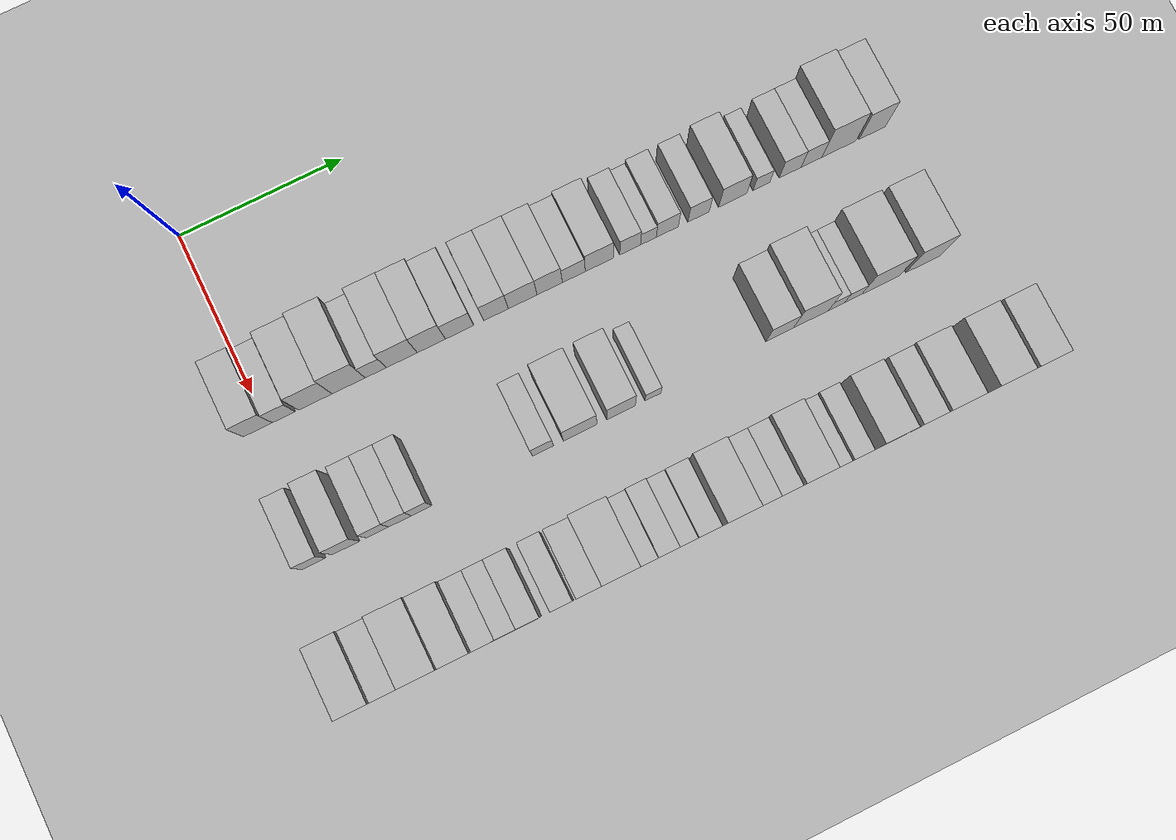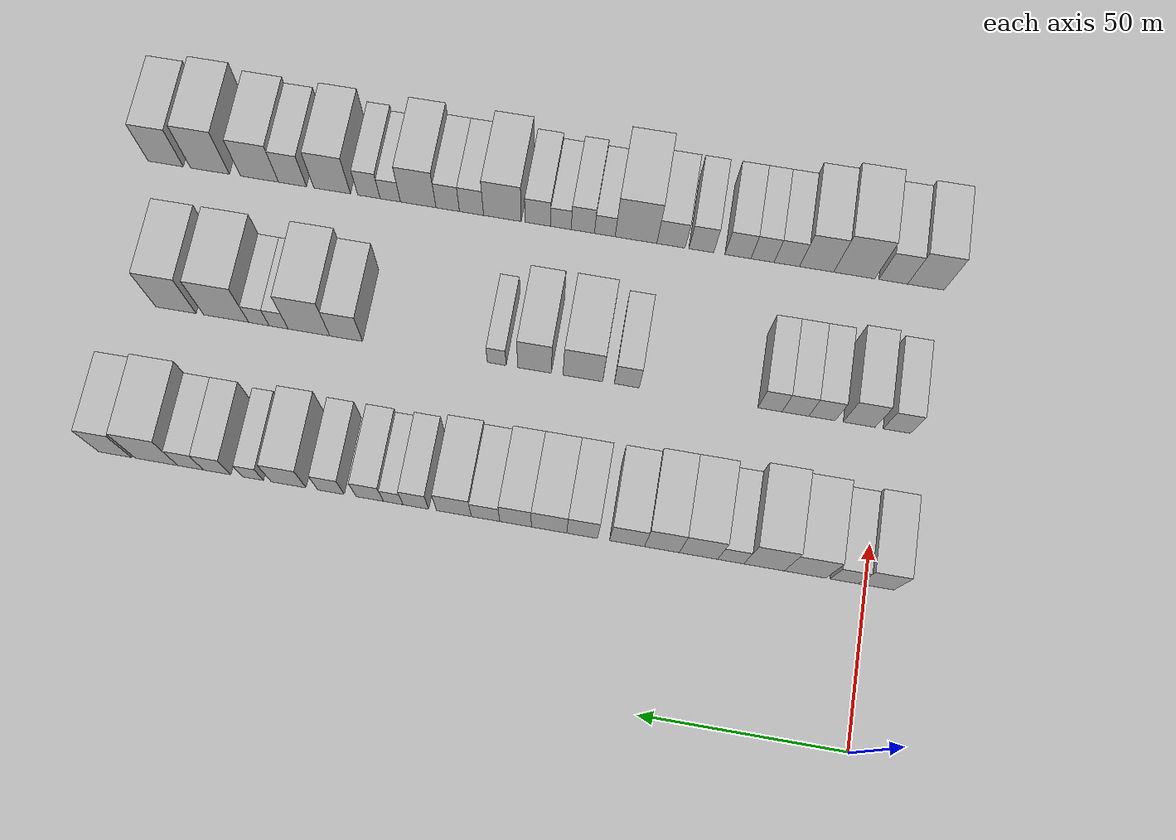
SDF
<sdf version="1.6">
 <world name="default">
  <include><name>ground_plane_1</name><uri>model://HANNAS_ground_plane</uri></include>
  <include>
   <name>ground_plane_2</name>
   <uri>model://HANNAS_ground_plane</uri>
   <pose>100 0 0  0 0 0</pose>
  </include>
  <model name="building_44">
   <static>1</static>
   <pose>50.0000 -2.4323 0 0.000000 0.000000 0.000000</pose>
   <link name="link">
    <pose>0 0 9.00 0 0 0</pose>
    <collision name="collision"><geometry><box><size>20.0000 8.6855 18.0000</size></box></geometry></collision>
    <visual name="visual">
     <cast_shadows>0</cast_shadows>
     <geometry><box><size>20.0000 8.6855 18.0000</size></box></geometry>
     <material>
      <script>
       <uri>model://HANNAS_wall/materials/scripts</uri>
       <uri>model://HANNAS_wall/materials/textures</uri>
       <name>vrc/HANNAS_wall</name>
      </script>
     </material>
    </visual>
   </link>
  </model>
  <model name="building_45">
   <static>1</static>
   <pose>50.0000 5.3579 0 0.000000 0.000000 0.000000</pose>
   <link name="link">
    <pose>0 0 7.50 0 0 0</pose>
    <collision name="collision"><geometry><box><size>20.0000 6.8949 15.0000</size></box></geometry></collision>
    <visual name="visual">
     <cast_shadows>0</cast_shadows>
     <geometry><box><size>20.0000 6.8949 15.0000</size></box></geometry>
     <material>
      <script>
       <uri>model://HANNAS_wall/materials/scripts</uri>
       <uri>model://HANNAS_wall/materials/textures</uri>
       <name>vrc/HANNAS_wall</name>
      </script>
     </material>
    </visual>
   </link>
  </model>
  <model name="building_46">
   <static>1</static>
   <pose>50.0000 14.8771 0 0.000000 0.000000 0.000000</pose>
   <link name="link">
    <pose>0 0 10.50 0 0 0</pose>
    <collision name="collision"><geometry><box><size>20.0000 10.1435 21.0000</size></box></geometry></collision>
    <visual name="visual">
     <cast_shadows>0</cast_shadows>
     <geometry><box><size>20.0000 10.1435 21.0000</size></box></geometry>
     <material>
      <script>
       <uri>model://HANNAS_wall/materials/scripts</uri>
       <uri>model://HANNAS_wall/materials/textures</uri>
       <name>vrc/HANNAS_wall</name>
      </script>
     </material>
    </visual>
   </link>
  </model>
  <model name="building_47">
   <static>1</static>
   <pose>50.0000 24.9479 0 0.000000 0.000000 0.000000</pose>
   <link name="link">
    <pose>0 0 12.00 0 0 0</pose>
    <collision name="collision"><geometry><box><size>20.0000 9.9981 24.0000</size></box></geometry></collision>
    <visual name="visual">
     <cast_shadows>0</cast_shadows>
     <geometry><box><size>20.0000 9.9981 24.0000</size></box></geometry>
     <material>
      <script>
       <uri>model://HANNAS_wall/materials/scripts</uri>
       <uri>model://HANNAS_wall/materials/textures</uri>
       <name>vrc/HANNAS_wall</name>
      </script>
     </material>
    </visual>
   </link>
  </model>
  <model name="building_48">
   <static>1</static>
   <pose>50.0000 33.1566 0 0.000000 0.000000 0.000000</pose>
   <link name="link">
    <pose>0 0 7.50 0 0 0</pose>
    <collision name="collision"><geometry><box><size>20.0000 6.4193 15.0000</size></box></geometry></collision>
    <visual name="visual">
     <cast_shadows>0</cast_shadows>
     <geometry><box><size>20.0000 6.4193 15.0000</size></box></geometry>
     <material>
      <script>
       <uri>model://HANNAS_wall/materials/scripts</uri>
       <uri>model://HANNAS_wall/materials/textures</uri>
       <name>vrc/HANNAS_wall</name>
      </script>
     </material>
    </visual>
   </link>
  </model>
  <model name="building_49">
   <static>1</static>
   <pose>50.0000 41.0933 0 0.000000 0.000000 0.000000</pose>
   <link name="link">
    <pose>0 0 10.50 0 0 0</pose>
    <collision name="collision"><geometry><box><size>20.0000 9.4541 21.0000</size></box></geometry></collision>
    <visual name="visual">
     <cast_shadows>0</cast_shadows>
     <geometry><box><size>20.0000 9.4541 21.0000</size></box></geometry>
     <material>
      <script>
       <uri>model://HANNAS_wall/materials/scripts</uri>
       <uri>model://HANNAS_wall/materials/textures</uri>
       <name>vrc/HANNAS_wall</name>
      </script>
     </material>
    </visual>
   </link>
  </model>
  <model name="building_50">
   <static>1</static>
   <pose>50.0000 50.1403 0 0.000000 0.000000 0.000000</pose>
   <link name="link">
    <pose>0 0 10.50 0 0 0</pose>
    <collision name="collision"><geometry><box><size>20.0000 8.6399 21.0000</size></box></geometry></collision>
    <visual name="visual">
     <cast_shadows>0</cast_shadows>
     <geometry><box><size>20.0000 8.6399 21.0000</size></box></geometry>
     <material>
      <script>
       <uri>model://HANNAS_wall/materials/scripts</uri>
       <uri>model://HANNAS_wall/materials/textures</uri>
       <name>vrc/HANNAS_wall</name>
      </script>
     </material>
    </visual>
   </link>
  </model>
  <model name="building_51">
   <static>1</static>
   <pose>50.0000 58.8040 0 0.000000 0.000000 0.000000</pose>
   <link name="link">
    <pose>0 0 9.00 0 0 0</pose>
    <collision name="collision"><geometry><box><size>20.0000 8.6874 18.0000</size></box></geometry></collision>
    <visual name="visual">
     <cast_shadows>0</cast_shadows>
     <geometry><box><size>20.0000 8.6874 18.0000</size></box></geometry>
     <material>
      <script>
       <uri>model://HANNAS_wall/materials/scripts</uri>
       <uri>model://HANNAS_wall/materials/textures</uri>
       <name>vrc/HANNAS_wall</name>
      </script>
     </material>
    </visual>
   </link>
  </model>
  <model name="building_52">
   <static>1</static>
   <pose>50.0000 69.9709 0 0.000000 0.000000 0.000000</pose>
   <link name="link">
    <pose>0 0 9.00 0 0 0</pose>
    <collision name="collision"><geometry><box><size>20.0000 7.6463 18.0000</size></box></geometry></collision>
    <visual name="visual">
     <cast_shadows>0</cast_shadows>
     <geometry><box><size>20.0000 7.6463 18.0000</size></box></geometry>
     <material>
      <script>
       <uri>model://HANNAS_wall/materials/scripts</uri>
       <uri>model://HANNAS_wall/materials/textures</uri>
       <name>vrc/HANNAS_wall</name>
      </script>
     </material>
    </visual>
   </link>
  </model>
  <model name="building_53">
   <static>1</static>
   <pose>50.0000 78.2088 0 0.000000 0.000000 0.000000</pose>
   <link name="link">
    <pose>0 0 9.00 0 0 0</pose>
    <collision name="collision"><geometry><box><size>20.0000 8.8295 18.0000</size></box></geometry></collision>
    <visual name="visual">
     <cast_shadows>0</cast_shadows>
     <geometry><box><size>20.0000 8.8295 18.0000</size></box></geometry>
     <material>
      <script>
       <uri>model://HANNAS_wall/materials/scripts</uri>
       <uri>model://HANNAS_wall/materials/textures</uri>
       <name>vrc/HANNAS_wall</name>
      </script>
     </material>
    </visual>
   </link>
  </model>
  <model name="building_54">
   <static>1</static>
   <pose>50.0000 86.5597 0 0.000000 0.000000 0.000000</pose>
   <link name="link">
    <pose>0 0 9.00 0 0 0</pose>
    <collision name="collision"><geometry><box><size>20.0000 7.8723 18.0000</size></box></geometry></collision>
    <visual name="visual">
     <cast_shadows>0</cast_shadows>
     <geometry><box><size>20.0000 7.8723 18.0000</size></box></geometry>
     <material>
      <script>
       <uri>model://HANNAS_wall/materials/scripts</uri>
       <uri>model://HANNAS_wall/materials/textures</uri>
       <name>vrc/HANNAS_wall</name>
      </script>
     </material>
    </visual>
   </link>
  </model>
  <model name="building_55">
   <static>1</static>
   <pose>50.0000 94.0495 0 0.000000 0.000000 0.000000</pose>
   <link name="link">
    <pose>0 0 7.50 0 0 0</pose>
    <collision name="collision"><geometry><box><size>20.0000 7.1074 15.0000</size></box></geometry></collision>
    <visual name="visual">
     <cast_shadows>0</cast_shadows>
     <geometry><box><size>20.0000 7.1074 15.0000</size></box></geometry>
     <material>
      <script>
       <uri>model://HANNAS_wall/materials/scripts</uri>
       <uri>model://HANNAS_wall/materials/textures</uri>
       <name>vrc/HANNAS_wall</name>
      </script>
     </material>
    </visual>
   </link>
  </model>
  <model name="building_56">
   <static>1</static>
   <pose>50.0000 101.9663 0 0.000000 0.000000 0.000000</pose>
   <link name="link">
    <pose>0 0 9.00 0 0 0</pose>
    <collision name="collision"><geometry><box><size>20.0000 8.7262 18.0000</size></box></geometry></collision>
    <visual name="visual">
     <cast_shadows>0</cast_shadows>
     <geometry><box><size>20.0000 8.7262 18.0000</size></box></geometry>
     <material>
      <script>
       <uri>model://HANNAS_wall/materials/scripts</uri>
       <uri>model://HANNAS_wall/materials/textures</uri>
       <name>vrc/HANNAS_wall</name>
      </script>
     </material>
    </visual>
   </link>
  </model>
  <model name="building_57">
   <static>1</static>
   <pose>50.0000 111.5632 0 0.000000 0.000000 0.000000</pose>
   <link name="link">
    <pose>0 0 7.50 0 0 0</pose>
    <collision name="collision"><geometry><box><size>20.0000 6.4676 15.0000</size></box></geometry></collision>
    <visual name="visual">
     <cast_shadows>0</cast_shadows>
     <geometry><box><size>20.0000 6.4676 15.0000</size></box></geometry>
     <material>
      <script>
       <uri>model://HANNAS_wall/materials/scripts</uri>
       <uri>model://HANNAS_wall/materials/textures</uri>
       <name>vrc/HANNAS_wall</name>
      </script>
     </material>
    </visual>
   </link>
  </model>
  <model name="building_58">
   <static>1</static>
   <pose>50.0000 117.2710 0 0.000000 0.000000 0.000000</pose>
   <link name="link">
    <pose>0 0 6.00 0 0 0</pose>
    <collision name="collision"><geometry><box><size>20.0000 4.9481 12.0000</size></box></geometry></collision>
    <visual name="visual">
     <cast_shadows>0</cast_shadows>
     <geometry><box><size>20.0000 4.9481 12.0000</size></box></geometry>
     <material>
      <script>
       <uri>model://HANNAS_wall/materials/scripts</uri>
       <uri>model://HANNAS_wall/materials/textures</uri>
       <name>vrc/HANNAS_wall</name>
      </script>
     </material>
    </visual>
   </link>
  </model>
  <model name="building_59">
   <static>1</static>
   <pose>50.0000 123.2092 0 0.000000 0.000000 0.000000</pose>
   <link name="link">
    <pose>0 0 7.50 0 0 0</pose>
    <collision name="collision"><geometry><box><size>20.0000 6.9283 15.0000</size></box></geometry></collision>
    <visual name="visual">
     <cast_shadows>0</cast_shadows>
     <geometry><box><size>20.0000 6.9283 15.0000</size></box></geometry>
     <material>
      <script>
       <uri>model://HANNAS_wall/materials/scripts</uri>
       <uri>model://HANNAS_wall/materials/textures</uri>
       <name>vrc/HANNAS_wall</name>
      </script>
     </material>
    </visual>
   </link>
  </model>
  <model name="building_60">
   <static>1</static>
   <pose>50.0000 133.0297 0 0.000000 0.000000 0.000000</pose>
   <link name="link">
    <pose>0 0 7.50 0 0 0</pose>
    <collision name="collision"><geometry><box><size>20.0000 6.7127 15.0000</size></box></geometry></collision>
    <visual name="visual">
     <cast_shadows>0</cast_shadows>
     <geometry><box><size>20.0000 6.7127 15.0000</size></box></geometry>
     <material>
      <script>
       <uri>model://HANNAS_wall/materials/scripts</uri>
       <uri>model://HANNAS_wall/materials/textures</uri>
       <name>vrc/HANNAS_wall</name>
      </script>
     </material>
    </visual>
   </link>
  </model>
  <model name="building_61">
   <static>1</static>
   <pose>50.0000 143.8145 0 0.000000 0.000000 0.000000</pose>
   <link name="link">
    <pose>0 0 9.00 0 0 0</pose>
    <collision name="collision"><geometry><box><size>20.0000 8.8569 18.0000</size></box></geometry></collision>
    <visual name="visual">
     <cast_shadows>0</cast_shadows>
     <geometry><box><size>20.0000 8.8569 18.0000</size></box></geometry>
     <material>
      <script>
       <uri>model://HANNAS_wall/materials/scripts</uri>
       <uri>model://HANNAS_wall/materials/textures</uri>
       <name>vrc/HANNAS_wall</name>
      </script>
     </material>
    </visual>
   </link>
  </model>
  <model name="building_62">
   <static>1</static>
   <pose>50.0000 152.9021 0 0.000000 0.000000 0.000000</pose>
   <link name="link">
    <pose>0 0 6.00 0 0 0</pose>
    <collision name="collision"><geometry><box><size>20.0000 5.3185 12.0000</size></box></geometry></collision>
    <visual name="visual">
     <cast_shadows>0</cast_shadows>
     <geometry><box><size>20.0000 5.3185 12.0000</size></box></geometry>
     <material>
      <script>
       <uri>model://HANNAS_wall/materials/scripts</uri>
       <uri>model://HANNAS_wall/materials/textures</uri>
       <name>vrc/HANNAS_wall</name>
      </script>
     </material>
    </visual>
   </link>
  </model>
  <model name="building_63">
   <static>1</static>
   <pose>50.0000 162.0678 0 0.000000 0.000000 0.000000</pose>
   <link name="link">
    <pose>0 0 7.50 0 0 0</pose>
    <collision name="collision"><geometry><box><size>20.0000 7.0128 15.0000</size></box></geometry></collision>
    <visual name="visual">
     <cast_shadows>0</cast_shadows>
     <geometry><box><size>20.0000 7.0128 15.0000</size></box></geometry>
     <material>
      <script>
       <uri>model://HANNAS_wall/materials/scripts</uri>
       <uri>model://HANNAS_wall/materials/textures</uri>
       <name>vrc/HANNAS_wall</name>
      </script>
     </material>
    </visual>
   </link>
  </model>
  <model name="building_64">
   <static>1</static>
   <pose>50.0000 168.8523 0 0.000000 0.000000 0.000000</pose>
   <link name="link">
    <pose>0 0 7.50 0 0 0</pose>
    <collision name="collision"><geometry><box><size>20.0000 6.5562 15.0000</size></box></geometry></collision>
    <visual name="visual">
     <cast_shadows>0</cast_shadows>
     <geometry><box><size>20.0000 6.5562 15.0000</size></box></geometry>
     <material>
      <script>
       <uri>model://HANNAS_wall/materials/scripts</uri>
       <uri>model://HANNAS_wall/materials/textures</uri>
       <name>vrc/HANNAS_wall</name>
      </script>
     </material>
    </visual>
   </link>
  </model>
  <model name="building_65">
   <static>1</static>
   <pose>50.0000 177.6040 0 0.000000 0.000000 0.000000</pose>
   <link name="link">
    <pose>0 0 12.00 0 0 0</pose>
    <collision name="collision"><geometry><box><size>20.0000 10.9473 24.0000</size></box></geometry></collision>
    <visual name="visual">
     <cast_shadows>0</cast_shadows>
     <geometry><box><size>20.0000 10.9473 24.0000</size></box></geometry>
     <material>
      <script>
       <uri>model://HANNAS_wall/materials/scripts</uri>
       <uri>model://HANNAS_wall/materials/textures</uri>
       <name>vrc/HANNAS_wall</name>
      </script>
     </material>
    </visual>
   </link>
  </model>
  <model name="building_66">
   <static>1</static>
   <pose>50.0000 188.2882 0 0.000000 0.000000 0.000000</pose>
   <link name="link">
    <pose>0 0 10.50 0 0 0</pose>
    <collision name="collision"><geometry><box><size>20.0000 8.4212 21.0000</size></box></geometry></collision>
    <visual name="visual">
     <cast_shadows>0</cast_shadows>
     <geometry><box><size>20.0000 8.4212 21.0000</size></box></geometry>
     <material>
      <script>
       <uri>model://HANNAS_wall/materials/scripts</uri>
       <uri>model://HANNAS_wall/materials/textures</uri>
       <name>vrc/HANNAS_wall</name>
      </script>
     </material>
    </visual>
   </link>
  </model>
  <model name="building_130">
   <static>1</static>
   <pose>90.0000 -3.6474 0 0.000000 0.000000 0.000000</pose>
   <link name="link">
    <pose>0 0 7.50 0 0 0</pose>
    <collision name="collision"><geometry><box><size>20.0000 6.9148 15.0000</size></box></geometry></collision>
    <visual name="visual">
     <cast_shadows>0</cast_shadows>
     <geometry><box><size>20.0000 6.9148 15.0000</size></box></geometry>
     <material>
      <script>
       <uri>model://HANNAS_wall/materials/scripts</uri>
       <uri>model://HANNAS_wall/materials/textures</uri>
       <name>vrc/HANNAS_wall</name>
      </script>
     </material>
    </visual>
   </link>
  </model>
  <model name="building_131">
   <static>1</static>
   <pose>90.0000 5.8521 0 0.000000 0.000000 0.000000</pose>
   <link name="link">
    <pose>0 0 9.00 0 0 0</pose>
    <collision name="collision"><geometry><box><size>20.0000 8.0843 18.0000</size></box></geometry></collision>
    <visual name="visual">
     <cast_shadows>0</cast_shadows>
     <geometry><box><size>20.0000 8.0843 18.0000</size></box></geometry>
     <material>
      <script>
       <uri>model://HANNAS_wall/materials/scripts</uri>
       <uri>model://HANNAS_wall/materials/textures</uri>
       <name>vrc/HANNAS_wall</name>
      </script>
     </material>
    </visual>
   </link>
  </model>
  <model name="building_132">
   <static>1</static>
   <pose>90.0000 15.2468 0 0.000000 0.000000 0.000000</pose>
   <link name="link">
    <pose>0 0 7.50 0 0 0</pose>
    <collision name="collision"><geometry><box><size>20.0000 6.7051 15.0000</size></box></geometry></collision>
    <visual name="visual">
     <cast_shadows>0</cast_shadows>
     <geometry><box><size>20.0000 6.7051 15.0000</size></box></geometry>
     <material>
      <script>
       <uri>model://HANNAS_wall/materials/scripts</uri>
       <uri>model://HANNAS_wall/materials/textures</uri>
       <name>vrc/HANNAS_wall</name>
      </script>
     </material>
    </visual>
   </link>
  </model>
  <model name="building_133">
   <static>1</static>
   <pose>90.0000 21.9842 0 0.000000 0.000000 0.000000</pose>
   <link name="link">
    <pose>0 0 7.50 0 0 0</pose>
    <collision name="collision"><geometry><box><size>20.0000 6.7697 15.0000</size></box></geometry></collision>
    <visual name="visual">
     <cast_shadows>0</cast_shadows>
     <geometry><box><size>20.0000 6.7697 15.0000</size></box></geometry>
     <material>
      <script>
       <uri>model://HANNAS_wall/materials/scripts</uri>
       <uri>model://HANNAS_wall/materials/textures</uri>
       <name>vrc/HANNAS_wall</name>
      </script>
     </material>
    </visual>
   </link>
  </model>
  <model name="building_134">
   <static>1</static>
   <pose>90.0000 28.4486 0 0.000000 0.000000 0.000000</pose>
   <link name="link">
    <pose>0 0 7.50 0 0 0</pose>
    <collision name="collision"><geometry><box><size>20.0000 6.1591 15.0000</size></box></geometry></collision>
    <visual name="visual">
     <cast_shadows>0</cast_shadows>
     <geometry><box><size>20.0000 6.1591 15.0000</size></box></geometry>
     <material>
      <script>
       <uri>model://HANNAS_wall/materials/scripts</uri>
       <uri>model://HANNAS_wall/materials/textures</uri>
       <name>vrc/HANNAS_wall</name>
      </script>
     </material>
    </visual>
   </link>
  </model>
  <model name="building_135">
   <static>1</static>
   <pose>90.0000 65.0959 0 0.000000 0.000000 0.000000</pose>
   <link name="link">
    <pose>0 0 7.50 0 0 0</pose>
    <collision name="collision"><geometry><box><size>20.0000 6.3785 15.0000</size></box></geometry></collision>
    <visual name="visual">
     <cast_shadows>0</cast_shadows>
     <geometry><box><size>20.0000 6.3785 15.0000</size></box></geometry>
     <material>
      <script>
       <uri>model://HANNAS_wall/materials/scripts</uri>
       <uri>model://HANNAS_wall/materials/textures</uri>
       <name>vrc/HANNAS_wall</name>
      </script>
     </material>
    </visual>
   </link>
  </model>
  <model name="building_136">
   <static>1</static>
   <pose>90.0000 76.4024 0 0.000000 0.000000 0.000000</pose>
   <link name="link">
    <pose>0 0 10.50 0 0 0</pose>
    <collision name="collision"><geometry><box><size>20.0000 10.2346 21.0000</size></box></geometry></collision>
    <visual name="visual">
     <cast_shadows>0</cast_shadows>
     <geometry><box><size>20.0000 10.2346 21.0000</size></box></geometry>
     <material>
      <script>
       <uri>model://HANNAS_wall/materials/scripts</uri>
       <uri>model://HANNAS_wall/materials/textures</uri>
       <name>vrc/HANNAS_wall</name>
      </script>
     </material>
    </visual>
   </link>
  </model>
  <model name="building_137">
   <static>1</static>
   <pose>90.0000 88.8736 0 0.000000 0.000000 0.000000</pose>
   <link name="link">
    <pose>0 0 10.50 0 0 0</pose>
    <collision name="collision"><geometry><box><size>20.0000 8.7078 21.0000</size></box></geometry></collision>
    <visual name="visual">
     <cast_shadows>0</cast_shadows>
     <geometry><box><size>20.0000 8.7078 21.0000</size></box></geometry>
     <material>
      <script>
       <uri>model://HANNAS_wall/materials/scripts</uri>
       <uri>model://HANNAS_wall/materials/textures</uri>
       <name>vrc/HANNAS_wall</name>
      </script>
     </material>
    </visual>
   </link>
  </model>
  <model name="building_138">
   <static>1</static>
   <pose>90.0000 98.6593 0 0.000000 0.000000 0.000000</pose>
   <link name="link">
    <pose>0 0 6.00 0 0 0</pose>
    <collision name="collision"><geometry><box><size>20.0000 4.8636 12.0000</size></box></geometry></collision>
    <visual name="visual">
     <cast_shadows>0</cast_shadows>
     <geometry><box><size>20.0000 4.8636 12.0000</size></box></geometry>
     <material>
      <script>
       <uri>model://HANNAS_wall/materials/scripts</uri>
       <uri>model://HANNAS_wall/materials/textures</uri>
       <name>vrc/HANNAS_wall</name>
      </script>
     </material>
    </visual>
   </link>
  </model>
  <model name="building_139">
   <static>1</static>
   <pose>90.0000 137.9759 0 0.000000 0.000000 0.000000</pose>
   <link name="link">
    <pose>0 0 9.00 0 0 0</pose>
    <collision name="collision"><geometry><box><size>20.0000 8.5899 18.0000</size></box></geometry></collision>
    <visual name="visual">
     <cast_shadows>0</cast_shadows>
     <geometry><box><size>20.0000 8.5899 18.0000</size></box></geometry>
     <material>
      <script>
       <uri>model://HANNAS_wall/materials/scripts</uri>
       <uri>model://HANNAS_wall/materials/textures</uri>
       <name>vrc/HANNAS_wall</name>
      </script>
     </material>
    </visual>
   </link>
  </model>
  <model name="building_140">
   <static>1</static>
   <pose>90.0000 147.7442 0 0.000000 0.000000 0.000000</pose>
   <link name="link">
    <pose>0 0 12.00 0 0 0</pose>
    <collision name="collision"><geometry><box><size>20.0000 10.9467 24.0000</size></box></geometry></collision>
    <visual name="visual">
     <cast_shadows>0</cast_shadows>
     <geometry><box><size>20.0000 10.9467 24.0000</size></box></geometry>
     <material>
      <script>
       <uri>model://HANNAS_wall/materials/scripts</uri>
       <uri>model://HANNAS_wall/materials/textures</uri>
       <name>vrc/HANNAS_wall</name>
      </script>
     </material>
    </visual>
   </link>
  </model>
  <model name="building_141">
   <static>1</static>
   <pose>90.0000 155.7214 0 0.000000 0.000000 0.000000</pose>
   <link name="link">
    <pose>0 0 6.00 0 0 0</pose>
    <collision name="collision"><geometry><box><size>20.0000 5.0077 12.0000</size></box></geometry></collision>
    <visual name="visual">
     <cast_shadows>0</cast_shadows>
     <geometry><box><size>20.0000 5.0077 12.0000</size></box></geometry>
     <material>
      <script>
       <uri>model://HANNAS_wall/materials/scripts</uri>
       <uri>model://HANNAS_wall/materials/textures</uri>
       <name>vrc/HANNAS_wall</name>
      </script>
     </material>
    </visual>
   </link>
  </model>
  <model name="building_142">
   <static>1</static>
   <pose>90.0000 160.9526 0 0.000000 0.000000 0.000000</pose>
   <link name="link">
    <pose>0 0 6.00 0 0 0</pose>
    <collision name="collision"><geometry><box><size>20.0000 5.4547 12.0000</size></box></geometry></collision>
    <visual name="visual">
     <cast_shadows>0</cast_shadows>
     <geometry><box><size>20.0000 5.4547 12.0000</size></box></geometry>
     <material>
      <script>
       <uri>model://HANNAS_wall/materials/scripts</uri>
       <uri>model://HANNAS_wall/materials/textures</uri>
       <name>vrc/HANNAS_wall</name>
      </script>
     </material>
    </visual>
   </link>
  </model>
  <model name="building_143">
   <static>1</static>
   <pose>90.0000 169.6423 0 0.000000 0.000000 0.000000</pose>
   <link name="link">
    <pose>0 0 12.00 0 0 0</pose>
    <collision name="collision"><geometry><box><size>20.0000 11.9247 24.0000</size></box></geometry></collision>
    <visual name="visual">
     <cast_shadows>0</cast_shadows>
     <geometry><box><size>20.0000 11.9247 24.0000</size></box></geometry>
     <material>
      <script>
       <uri>model://HANNAS_wall/materials/scripts</uri>
       <uri>model://HANNAS_wall/materials/textures</uri>
       <name>vrc/HANNAS_wall</name>
      </script>
     </material>
    </visual>
   </link>
  </model>
  <model name="building_144">
   <static>1</static>
   <pose>90.0000 182.9786 0 0.000000 0.000000 0.000000</pose>
   <link name="link">
    <pose>0 0 12.00 0 0 0</pose>
    <collision name="collision"><geometry><box><size>20.0000 10.7478 24.0000</size></box></geometry></collision>
    <visual name="visual">
     <cast_shadows>0</cast_shadows>
     <geometry><box><size>20.0000 10.7478 24.0000</size></box></geometry>
     <material>
      <script>
       <uri>model://HANNAS_wall/materials/scripts</uri>
       <uri>model://HANNAS_wall/materials/textures</uri>
       <name>vrc/HANNAS_wall</name>
      </script>
     </material>
    </visual>
   </link>
  </model>
  <model name="building_206">
   <static>1</static>
   <pose>130.0000 -7.4166 0 0.000000 0.000000 0.000000</pose>
   <link name="link">
    <pose>0 0 10.50 0 0 0</pose>
    <collision name="collision"><geometry><box><size>20.0000 9.4836 21.0000</size></box></geometry></collision>
    <visual name="visual">
     <cast_shadows>0</cast_shadows>
     <geometry><box><size>20.0000 9.4836 21.0000</size></box></geometry>
     <material>
      <script>
       <uri>model://HANNAS_wall/materials/scripts</uri>
       <uri>model://HANNAS_wall/materials/textures</uri>
       <name>vrc/HANNAS_wall</name>
      </script>
     </material>
    </visual>
   </link>
  </model>
  <model name="building_207">
   <static>1</static>
   <pose>130.0000 1.0899 0 0.000000 0.000000 0.000000</pose>
   <link name="link">
    <pose>0 0 9.00 0 0 0</pose>
    <collision name="collision"><geometry><box><size>20.0000 7.5294 18.0000</size></box></geometry></collision>
    <visual name="visual">
     <cast_shadows>0</cast_shadows>
     <geometry><box><size>20.0000 7.5294 18.0000</size></box></geometry>
     <material>
      <script>
       <uri>model://HANNAS_wall/materials/scripts</uri>
       <uri>model://HANNAS_wall/materials/textures</uri>
       <name>vrc/HANNAS_wall</name>
      </script>
     </material>
    </visual>
   </link>
  </model>
  <model name="building_208">
   <static>1</static>
   <pose>130.0000 11.2648 0 0.000000 0.000000 0.000000</pose>
   <link name="link">
    <pose>0 0 12.00 0 0 0</pose>
    <collision name="collision"><geometry><box><size>20.0000 10.8204 24.0000</size></box></geometry></collision>
    <visual name="visual">
     <cast_shadows>0</cast_shadows>
     <geometry><box><size>20.0000 10.8204 24.0000</size></box></geometry>
     <material>
      <script>
       <uri>model://HANNAS_wall/materials/scripts</uri>
       <uri>model://HANNAS_wall/materials/textures</uri>
       <name>vrc/HANNAS_wall</name>
      </script>
     </material>
    </visual>
   </link>
  </model>
  <model name="building_209">
   <static>1</static>
   <pose>130.0000 21.1649 0 0.000000 0.000000 0.000000</pose>
   <link name="link">
    <pose>0 0 10.50 0 0 0</pose>
    <collision name="collision"><geometry><box><size>20.0000 8.9798 21.0000</size></box></geometry></collision>
    <visual name="visual">
     <cast_shadows>0</cast_shadows>
     <geometry><box><size>20.0000 8.9798 21.0000</size></box></geometry>
     <material>
      <script>
       <uri>model://HANNAS_wall/materials/scripts</uri>
       <uri>model://HANNAS_wall/materials/textures</uri>
       <name>vrc/HANNAS_wall</name>
      </script>
     </material>
    </visual>
   </link>
  </model>
  <model name="building_210">
   <static>1</static>
   <pose>130.0000 28.9889 0 0.000000 0.000000 0.000000</pose>
   <link name="link">
    <pose>0 0 7.50 0 0 0</pose>
    <collision name="collision"><geometry><box><size>20.0000 6.6683 15.0000</size></box></geometry></collision>
    <visual name="visual">
     <cast_shadows>0</cast_shadows>
     <geometry><box><size>20.0000 6.6683 15.0000</size></box></geometry>
     <material>
      <script>
       <uri>model://HANNAS_wall/materials/scripts</uri>
       <uri>model://HANNAS_wall/materials/textures</uri>
       <name>vrc/HANNAS_wall</name>
      </script>
     </material>
    </visual>
   </link>
  </model>
  <model name="building_211">
   <static>1</static>
   <pose>130.0000 35.3773 0 0.000000 0.000000 0.000000</pose>
   <link name="link">
    <pose>0 0 7.50 0 0 0</pose>
    <collision name="collision"><geometry><box><size>20.0000 6.1083 15.0000</size></box></geometry></collision>
    <visual name="visual">
     <cast_shadows>0</cast_shadows>
     <geometry><box><size>20.0000 6.1083 15.0000</size></box></geometry>
     <material>
      <script>
       <uri>model://HANNAS_wall/materials/scripts</uri>
       <uri>model://HANNAS_wall/materials/textures</uri>
       <name>vrc/HANNAS_wall</name>
      </script>
     </material>
    </visual>
   </link>
  </model>
  <model name="building_212">
   <static>1</static>
   <pose>130.0000 41.8594 0 0.000000 0.000000 0.000000</pose>
   <link name="link">
    <pose>0 0 7.50 0 0 0</pose>
    <collision name="collision"><geometry><box><size>20.0000 6.8559 15.0000</size></box></geometry></collision>
    <visual name="visual">
     <cast_shadows>0</cast_shadows>
     <geometry><box><size>20.0000 6.8559 15.0000</size></box></geometry>
     <material>
      <script>
       <uri>model://HANNAS_wall/materials/scripts</uri>
       <uri>model://HANNAS_wall/materials/textures</uri>
       <name>vrc/HANNAS_wall</name>
      </script>
     </material>
    </visual>
   </link>
  </model>
  <model name="building_213">
   <static>1</static>
   <pose>130.0000 51.5622 0 0.000000 0.000000 0.000000</pose>
   <link name="link">
    <pose>0 0 7.50 0 0 0</pose>
    <collision name="collision"><geometry><box><size>20.0000 6.5496 15.0000</size></box></geometry></collision>
    <visual name="visual">
     <cast_shadows>0</cast_shadows>
     <geometry><box><size>20.0000 6.5496 15.0000</size></box></geometry>
     <material>
      <script>
       <uri>model://HANNAS_wall/materials/scripts</uri>
       <uri>model://HANNAS_wall/materials/textures</uri>
       <name>vrc/HANNAS_wall</name>
      </script>
     </material>
    </visual>
   </link>
  </model>
  <model name="building_214">
   <static>1</static>
   <pose>130.0000 59.5865 0 0.000000 0.000000 0.000000</pose>
   <link name="link">
    <pose>0 0 7.50 0 0 0</pose>
    <collision name="collision"><geometry><box><size>20.0000 7.4991 15.0000</size></box></geometry></collision>
    <visual name="visual">
     <cast_shadows>0</cast_shadows>
     <geometry><box><size>20.0000 7.4991 15.0000</size></box></geometry>
     <material>
      <script>
       <uri>model://HANNAS_wall/materials/scripts</uri>
       <uri>model://HANNAS_wall/materials/textures</uri>
       <name>vrc/HANNAS_wall</name>
      </script>
     </material>
    </visual>
   </link>
  </model>
  <model name="building_215">
   <static>1</static>
   <pose>130.0000 68.8721 0 0.000000 0.000000 0.000000</pose>
   <link name="link">
    <pose>0 0 12.00 0 0 0</pose>
    <collision name="collision"><geometry><box><size>20.0000 11.0722 24.0000</size></box></geometry></collision>
    <visual name="visual">
     <cast_shadows>0</cast_shadows>
     <geometry><box><size>20.0000 11.0722 24.0000</size></box></geometry>
     <material>
      <script>
       <uri>model://HANNAS_wall/materials/scripts</uri>
       <uri>model://HANNAS_wall/materials/textures</uri>
       <name>vrc/HANNAS_wall</name>
      </script>
     </material>
    </visual>
   </link>
  </model>
  <model name="building_216">
   <static>1</static>
   <pose>130.0000 77.1511 0 0.000000 0.000000 0.000000</pose>
   <link name="link">
    <pose>0 0 6.00 0 0 0</pose>
    <collision name="collision"><geometry><box><size>20.0000 5.4858 12.0000</size></box></geometry></collision>
    <visual name="visual">
     <cast_shadows>0</cast_shadows>
     <geometry><box><size>20.0000 5.4858 12.0000</size></box></geometry>
     <material>
      <script>
       <uri>model://HANNAS_wall/materials/scripts</uri>
       <uri>model://HANNAS_wall/materials/textures</uri>
       <name>vrc/HANNAS_wall</name>
      </script>
     </material>
    </visual>
   </link>
  </model>
  <model name="building_217">
   <static>1</static>
   <pose>130.0000 83.0123 0 0.000000 0.000000 0.000000</pose>
   <link name="link">
    <pose>0 0 7.50 0 0 0</pose>
    <collision name="collision"><geometry><box><size>20.0000 6.2366 15.0000</size></box></geometry></collision>
    <visual name="visual">
     <cast_shadows>0</cast_shadows>
     <geometry><box><size>20.0000 6.2366 15.0000</size></box></geometry>
     <material>
      <script>
       <uri>model://HANNAS_wall/materials/scripts</uri>
       <uri>model://HANNAS_wall/materials/textures</uri>
       <name>vrc/HANNAS_wall</name>
      </script>
     </material>
    </visual>
   </link>
  </model>
  <model name="building_218">
   <static>1</static>
   <pose>130.0000 88.8991 0 0.000000 0.000000 0.000000</pose>
   <link name="link">
    <pose>0 0 6.00 0 0 0</pose>
    <collision name="collision"><geometry><box><size>20.0000 5.5369 12.0000</size></box></geometry></collision>
    <visual name="visual">
     <cast_shadows>0</cast_shadows>
     <geometry><box><size>20.0000 5.5369 12.0000</size></box></geometry>
     <material>
      <script>
       <uri>model://HANNAS_wall/materials/scripts</uri>
       <uri>model://HANNAS_wall/materials/textures</uri>
       <name>vrc/HANNAS_wall</name>
      </script>
     </material>
    </visual>
   </link>
  </model>
  <model name="building_219">
   <static>1</static>
   <pose>130.0000 95.0795 0 0.000000 0.000000 0.000000</pose>
   <link name="link">
    <pose>0 0 7.50 0 0 0</pose>
    <collision name="collision"><geometry><box><size>20.0000 6.8240 15.0000</size></box></geometry></collision>
    <visual name="visual">
     <cast_shadows>0</cast_shadows>
     <geometry><box><size>20.0000 6.8240 15.0000</size></box></geometry>
     <material>
      <script>
       <uri>model://HANNAS_wall/materials/scripts</uri>
       <uri>model://HANNAS_wall/materials/textures</uri>
       <name>vrc/HANNAS_wall</name>
      </script>
     </material>
    </visual>
   </link>
  </model>
  <model name="building_220">
   <static>1</static>
   <pose>130.0000 104.5497 0 0.000000 0.000000 0.000000</pose>
   <link name="link">
    <pose>0 0 10.50 0 0 0</pose>
    <collision name="collision"><geometry><box><size>20.0000 10.1163 21.0000</size></box></geometry></collision>
    <visual name="visual">
     <cast_shadows>0</cast_shadows>
     <geometry><box><size>20.0000 10.1163 21.0000</size></box></geometry>
     <material>
      <script>
       <uri>model://HANNAS_wall/materials/scripts</uri>
       <uri>model://HANNAS_wall/materials/textures</uri>
       <name>vrc/HANNAS_wall</name>
      </script>
     </material>
    </visual>
   </link>
  </model>
  <model name="building_221">
   <static>1</static>
   <pose>130.0000 112.8505 0 0.000000 0.000000 0.000000</pose>
   <link name="link">
    <pose>0 0 7.50 0 0 0</pose>
    <collision name="collision"><geometry><box><size>20.0000 6.4853 15.0000</size></box></geometry></collision>
    <visual name="visual">
     <cast_shadows>0</cast_shadows>
     <geometry><box><size>20.0000 6.4853 15.0000</size></box></geometry>
     <material>
      <script>
       <uri>model://HANNAS_wall/materials/scripts</uri>
       <uri>model://HANNAS_wall/materials/textures</uri>
       <name>vrc/HANNAS_wall</name>
      </script>
     </material>
    </visual>
   </link>
  </model>
  <model name="building_222">
   <static>1</static>
   <pose>130.0000 119.2485 0 0.000000 0.000000 0.000000</pose>
   <link name="link">
    <pose>0 0 7.50 0 0 0</pose>
    <collision name="collision"><geometry><box><size>20.0000 6.3108 15.0000</size></box></geometry></collision>
    <visual name="visual">
     <cast_shadows>0</cast_shadows>
     <geometry><box><size>20.0000 6.3108 15.0000</size></box></geometry>
     <material>
      <script>
       <uri>model://HANNAS_wall/materials/scripts</uri>
       <uri>model://HANNAS_wall/materials/textures</uri>
       <name>vrc/HANNAS_wall</name>
      </script>
     </material>
    </visual>
   </link>
  </model>
  <model name="building_223">
   <static>1</static>
   <pose>130.0000 127.2197 0 0.000000 0.000000 0.000000</pose>
   <link name="link">
    <pose>0 0 10.50 0 0 0</pose>
    <collision name="collision"><geometry><box><size>20.0000 9.6317 21.0000</size></box></geometry></collision>
    <visual name="visual">
     <cast_shadows>0</cast_shadows>
     <geometry><box><size>20.0000 9.6317 21.0000</size></box></geometry>
     <material>
      <script>
       <uri>model://HANNAS_wall/materials/scripts</uri>
       <uri>model://HANNAS_wall/materials/textures</uri>
       <name>vrc/HANNAS_wall</name>
      </script>
     </material>
    </visual>
   </link>
  </model>
  <model name="building_224">
   <static>1</static>
   <pose>130.0000 134.7914 0 0.000000 0.000000 0.000000</pose>
   <link name="link">
    <pose>0 0 6.00 0 0 0</pose>
    <collision name="collision"><geometry><box><size>20.0000 5.5116 12.0000</size></box></geometry></collision>
    <visual name="visual">
     <cast_shadows>0</cast_shadows>
     <geometry><box><size>20.0000 5.5116 12.0000</size></box></geometry>
     <material>
      <script>
       <uri>model://HANNAS_wall/materials/scripts</uri>
       <uri>model://HANNAS_wall/materials/textures</uri>
       <name>vrc/HANNAS_wall</name>
      </script>
     </material>
    </visual>
   </link>
  </model>
  <model name="building_225">
   <static>1</static>
   <pose>130.0000 140.5669 0 0.000000 0.000000 0.000000</pose>
   <link name="link">
    <pose>0 0 7.50 0 0 0</pose>
    <collision name="collision"><geometry><box><size>20.0000 6.0395 15.0000</size></box></geometry></collision>
    <visual name="visual">
     <cast_shadows>0</cast_shadows>
     <geometry><box><size>20.0000 6.0395 15.0000</size></box></geometry>
     <material>
      <script>
       <uri>model://HANNAS_wall/materials/scripts</uri>
       <uri>model://HANNAS_wall/materials/textures</uri>
       <name>vrc/HANNAS_wall</name>
      </script>
     </material>
    </visual>
   </link>
  </model>
  <model name="building_226">
   <static>1</static>
   <pose>130.0000 150.5720 0 0.000000 0.000000 0.000000</pose>
   <link name="link">
    <pose>0 0 10.50 0 0 0</pose>
    <collision name="collision"><geometry><box><size>20.0000 9.9707 21.0000</size></box></geometry></collision>
    <visual name="visual">
     <cast_shadows>0</cast_shadows>
     <geometry><box><size>20.0000 9.9707 21.0000</size></box></geometry>
     <material>
      <script>
       <uri>model://HANNAS_wall/materials/scripts</uri>
       <uri>model://HANNAS_wall/materials/textures</uri>
       <name>vrc/HANNAS_wall</name>
      </script>
     </material>
    </visual>
   </link>
  </model>
  <model name="building_227">
   <static>1</static>
   <pose>130.0000 161.3771 0 0.000000 0.000000 0.000000</pose>
   <link name="link">
    <pose>0 0 9.00 0 0 0</pose>
    <collision name="collision"><geometry><box><size>20.0000 7.6395 18.0000</size></box></geometry></collision>
    <visual name="visual">
     <cast_shadows>0</cast_shadows>
     <geometry><box><size>20.0000 7.6395 18.0000</size></box></geometry>
     <material>
      <script>
       <uri>model://HANNAS_wall/materials/scripts</uri>
       <uri>model://HANNAS_wall/materials/textures</uri>
       <name>vrc/HANNAS_wall</name>
      </script>
     </material>
    </visual>
   </link>
  </model>
  <model name="building_228">
   <static>1</static>
   <pose>130.0000 170.4038 0 0.000000 0.000000 0.000000</pose>
   <link name="link">
    <pose>0 0 10.50 0 0 0</pose>
    <collision name="collision"><geometry><box><size>20.0000 10.4138 21.0000</size></box></geometry></collision>
    <visual name="visual">
     <cast_shadows>0</cast_shadows>
     <geometry><box><size>20.0000 10.4138 21.0000</size></box></geometry>
     <material>
      <script>
       <uri>model://HANNAS_wall/materials/scripts</uri>
       <uri>model://HANNAS_wall/materials/textures</uri>
       <name>vrc/HANNAS_wall</name>
      </script>
     </material>
    </visual>
   </link>
  </model>
  <model name="building_229">
   <static>1</static>
   <pose>130.0000 183.9599 0 0.000000 0.000000 0.000000</pose>
   <link name="link">
    <pose>0 0 12.00 0 0 0</pose>
    <collision name="collision"><geometry><box><size>20.0000 10.6985 24.0000</size></box></geometry></collision>
    <visual name="visual">
     <cast_shadows>0</cast_shadows>
     <geometry><box><size>20.0000 10.6985 24.0000</size></box></geometry>
     <material>
      <script>
       <uri>model://HANNAS_wall/materials/scripts</uri>
       <uri>model://HANNAS_wall/materials/textures</uri>
       <name>vrc/HANNAS_wall</name>
      </script>
     </material>
    </visual>
   </link>
  </model>
  <model name="building_230">
   <static>1</static>
   <pose>130.0000 196.1493 0 0.000000 0.000000 0.000000</pose>
   <link name="link">
    <pose>0 0 10.50 0 0 0</pose>
    <collision name="collision"><geometry><box><size>20.0000 9.6803 21.0000</size></box></geometry></collision>
    <visual name="visual">
     <cast_shadows>0</cast_shadows>
     <geometry><box><size>20.0000 9.6803 21.0000</size></box></geometry>
     <material>
      <script>
       <uri>model://HANNAS_wall/materials/scripts</uri>
       <uri>model://HANNAS_wall/materials/textures</uri>
       <name>vrc/HANNAS_wall</name>
      </script>
     </material>
    </visual>
   </link>
  </model>
 </world>
</sdf>
